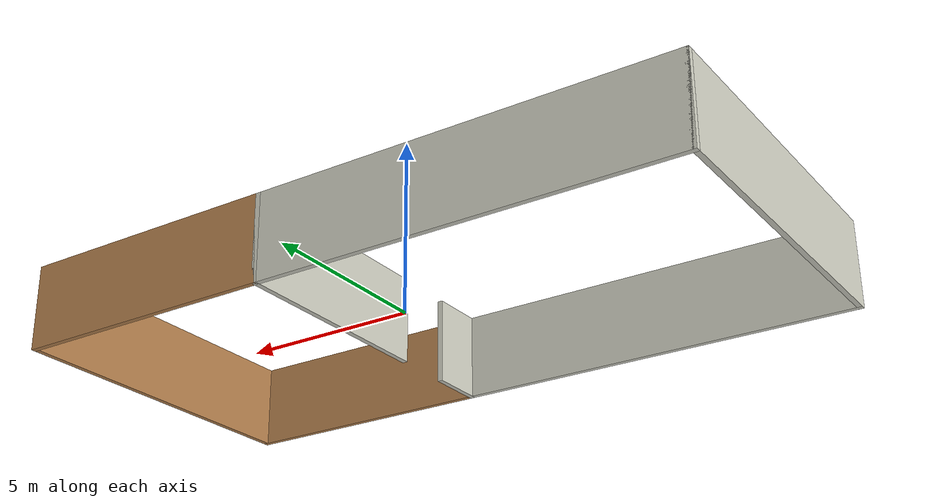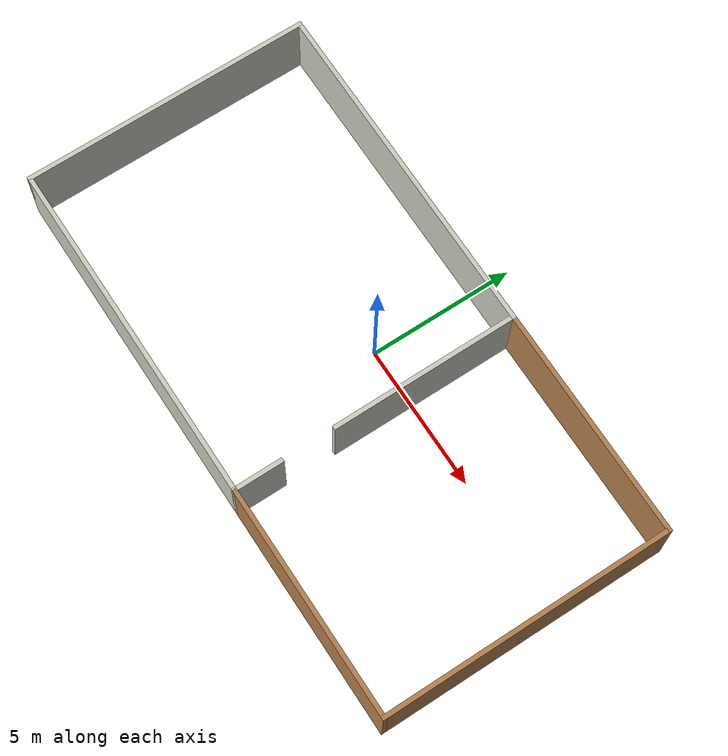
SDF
<?xml version='1.0'?>
<sdf version='1.7'>
  <model name='RA317'>
    <pose>0 0 0 0 -0 0</pose>
    <link name='Wall_0'>
      <collision name='Wall_0_Collision'>
        <geometry>
          <box>
            <size>12 0.15 2.5</size>
          </box>
        </geometry>
        <pose>0 0 1.25 0 -0 0</pose>
      </collision>
      <visual name='Wall_0_Visual'>
        <pose>0 0 1.25 0 -0 0</pose>
        <geometry>
          <box>
            <size>12 0.15 2.5</size>
          </box>
        </geometry>
        <material>
          <script>
            <uri>file://media/materials/scripts/gazebo.material</uri>
            <name>Gazebo/PaintedWall</name>
          </script>
          <ambient>1 1 1 1</ambient>
        </material>
        <meta>
          <layer>0</layer>
        </meta>
      </visual>
      <pose>-3.925 3.5925 0 0 -0 0</pose>
    </link>
    <link name='Wall_11'>
      <collision name='Wall_11_Collision'>
        <geometry>
          <box>
            <size>1.75 0.15 2.5</size>
          </box>
        </geometry>
        <pose>0 0 1.25 0 -0 0</pose>
      </collision>
      <visual name='Wall_11_Visual'>
        <pose>0 0 1.25 0 -0 0</pose>
        <geometry>
          <box>
            <size>1.75 0.15 2.5</size>
          </box>
        </geometry>
        <material>
          <script>
            <uri>file://media/materials/scripts/gazebo.material</uri>
            <name>Gazebo/PaintedWall</name>
          </script>
          <ambient>1 1 1 1</ambient>
        </material>
        <meta>
          <layer>0</layer>
        </meta>
      </visual>
      <pose>2 -5.4575 0 0 -0 1.5708</pose>
    </link>
    <link name='Wall_15'>
      <collision name='Wall_15_Collision'>
        <geometry>
          <box>
            <size>8 0.15 2.5</size>
          </box>
        </geometry>
        <pose>0 0 1.25 0 -0 0</pose>
      </collision>
      <visual name='Wall_15_Visual'>
        <pose>0 0 1.25 0 -0 0</pose>
        <geometry>
          <box>
            <size>8 0.15 2.5</size>
          </box>
        </geometry>
        <material>
          <script>
            <uri>file://media/materials/scripts/gazebo.material</uri>
            <name>Gazebo/Wood</name>
          </script>
          <ambient>1 1 1 1</ambient>
        </material>
        <meta>
          <layer>0</layer>
        </meta>
      </visual>
      <pose>5.925 3.5925 0 0 -0 0</pose>
    </link>
    <link name='Wall_16'>
      <collision name='Wall_16_Collision'>
        <geometry>
          <box>
            <size>10 0.15 2.5</size>
          </box>
        </geometry>
        <pose>0 0 1.25 0 -0 0</pose>
      </collision>
      <visual name='Wall_16_Visual'>
        <pose>0 0 1.25 0 -0 0</pose>
        <geometry>
          <box>
            <size>10 0.15 2.5</size>
          </box>
        </geometry>
        <material>
          <script>
            <uri>file://media/materials/scripts/gazebo.material</uri>
            <name>Gazebo/Wood</name>
          </script>
          <ambient>1 1 1 1</ambient>
        </material>
        <meta>
          <layer>0</layer>
        </meta>
      </visual>
      <pose>9.85 -1.3325 0 0 -0 -1.5708</pose>
    </link>
    <link name='Wall_17'>
      <collision name='Wall_17_Collision'>
        <geometry>
          <box>
            <size>8 0.15 2.5</size>
          </box>
        </geometry>
        <pose>0 0 1.25 0 -0 0</pose>
      </collision>
      <visual name='Wall_17_Visual'>
        <pose>0 0 1.25 0 -0 0</pose>
        <geometry>
          <box>
            <size>8 0.15 2.5</size>
          </box>
        </geometry>
        <material>
          <script>
            <uri>file://media/materials/scripts/gazebo.material</uri>
            <name>Gazebo/Wood</name>
          </script>
          <ambient>1 1 1 1</ambient>
        </material>
        <meta>
          <layer>0</layer>
        </meta>
      </visual>
      <pose>5.925 -6.2575 0 0 -0 3.14159</pose>
    </link>
    <link name='Wall_2'>
      <collision name='Wall_2_Collision'>
        <geometry>
          <box>
            <size>10 0.15 2.5</size>
          </box>
        </geometry>
        <pose>0 0 1.25 0 -0 0</pose>
      </collision>
      <visual name='Wall_2_Visual'>
        <pose>0 0 1.25 0 -0 0</pose>
        <geometry>
          <box>
            <size>10 0.15 2.5</size>
          </box>
        </geometry>
        <material>
          <script>
            <uri>file://media/materials/scripts/gazebo.material</uri>
            <name>Gazebo/PaintedWall</name>
          </script>
          <ambient>1 1 1 1</ambient>
        </material>
        <meta>
          <layer>0</layer>
        </meta>
      </visual>
      <pose>-9.85 -1.3325 0 0 -0 -1.5708</pose>
    </link>
    <link name='Wall_3'>
      <collision name='Wall_3_Collision'>
        <geometry>
          <box>
            <size>12 0.15 2.5</size>
          </box>
        </geometry>
        <pose>0 0 1.25 0 -0 0</pose>
      </collision>
      <visual name='Wall_3_Visual'>
        <pose>0 0 1.25 0 -0 0</pose>
        <geometry>
          <box>
            <size>12 0.15 2.5</size>
          </box>
        </geometry>
        <material>
          <script>
            <uri>file://media/materials/scripts/gazebo.material</uri>
            <name>Gazebo/PaintedWall</name>
          </script>
          <ambient>1 1 1 1</ambient>
        </material>
        <meta>
          <layer>0</layer>
        </meta>
      </visual>
      <pose>-3.925 -6.2575 0 0 -0 0</pose>
    </link>
    <link name='Wall_9'>
      <collision name='Wall_9_Collision'>
        <geometry>
          <box>
            <size>6.5 0.15 2.5</size>
          </box>
        </geometry>
        <pose>0 0 1.25 0 -0 0</pose>
      </collision>
      <visual name='Wall_9_Visual'>
        <pose>0 0 1.25 0 -0 0</pose>
        <geometry>
          <box>
            <size>6.5 0.15 2.5</size>
          </box>
        </geometry>
        <material>
          <script>
            <uri>file://media/materials/scripts/gazebo.material</uri>
            <name>Gazebo/PaintedWall</name>
          </script>
          <ambient>1 1 1 1</ambient>
        </material>
        <meta>
          <layer>0</layer>
        </meta>
      </visual>
      <pose>2 0.4175 0 0 -0 -1.5708</pose>
    </link>
    <static>1</static>
  </model>
</sdf>
